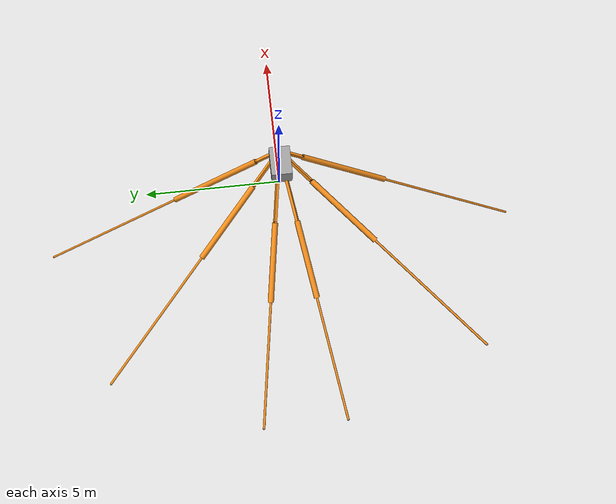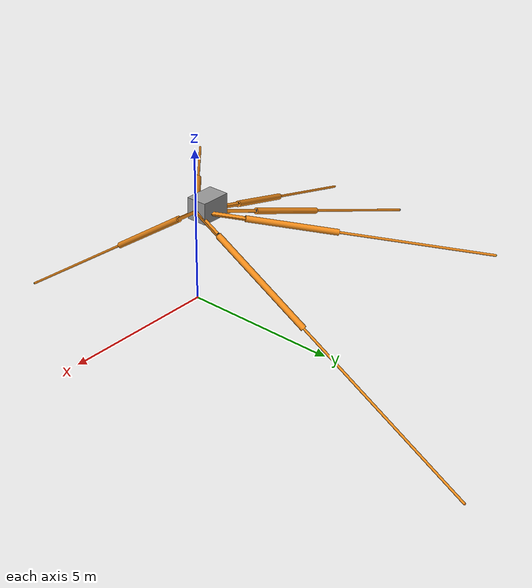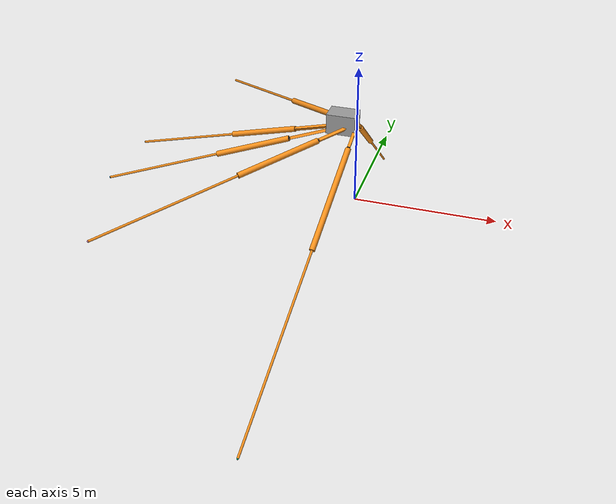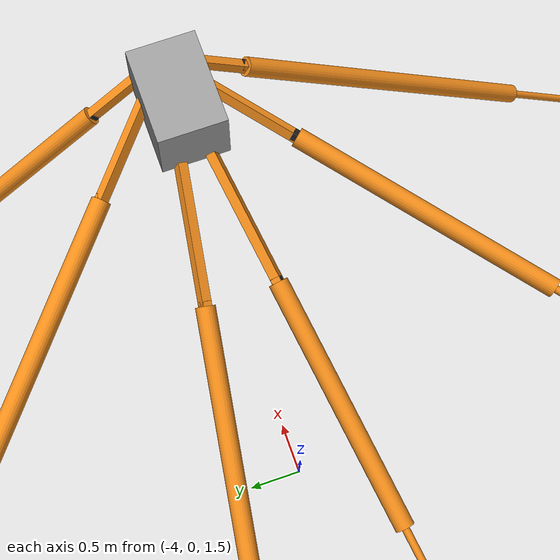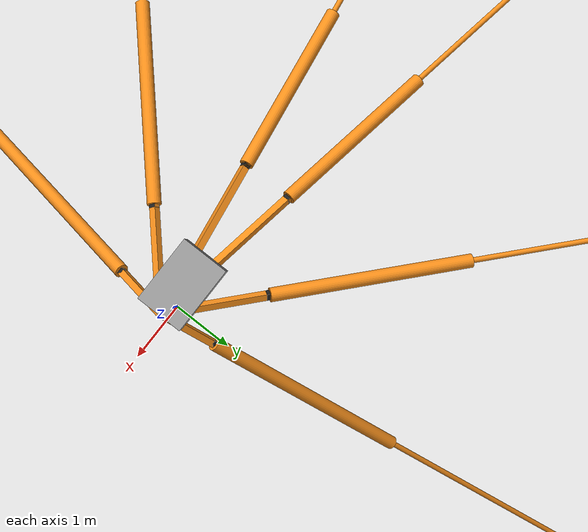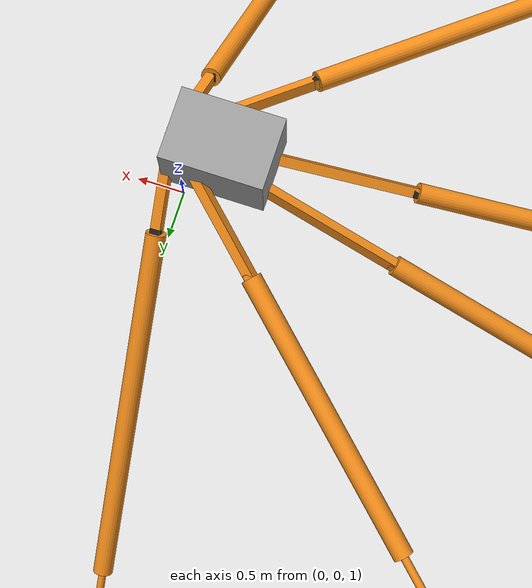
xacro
<?xml version="1.0"?>
<!-- Synthesis of an Ant Leg -->
<robot name="antmodel" xmlns:xacro="http://www.ros.org/wiki/xacro">

  <!-- Constants for robot dimensions -->
  <xacro:property name="PI" value="3.1415926535897931"/>

  <xacro:property name="body_mass" value="0.10" /> <!-- mean value about 10 mg -->
  <xacro:property name="leg_mass"  value="0.03" /> <!-- guessed value for one leg -> distributed evenly between femur & tibia -->
  <xacro:property name="mass"      value="0.01" /> <!-- dummy value for joints -->

  <xacro:property name="width" value="0.1" /> <!-- Square dimensions (widthxwidth) of beams -->
  <xacro:property name="height1" value="0.1" /> <!-- Link 1 -->
  <xacro:property name="height2" value="0.1" /> <!-- Link 2 -->
  <xacro:property name="height3" value="0.1" /> <!-- Link 3 -->

  <!-- Base transformation parameters -->
  <xacro:property name="AZ" value="6" /> <!-- -1*min(PZ(:,5)) 4.0127-->
  <xacro:property name="baseX" value="2.5329" /> <!-- link{1,2}(10,1) -->
  <xacro:property name="baseY" value="0.7012" /> <!-- link{1,2}(10,2) -->
  <xacro:property name="baseZ" value="-0.1418" /> <!-- link{1,2}(10,3) -->
  <xacro:property name="baseLf" value="2.4583" /> <!-- norm(links{1,2}(10,:)) --> <!-- Alessandro front: 2.632-->
  <xacro:property name="baseLm" value="1.5195" /> <!-- norm(links{1,2}(10,:)) -->
  <xacro:property name="baseLr" value="0.9946" /> <!-- norm(links{1,2}(10,:)) -->

 	<!-- front leg -->
  <xacro:property name="ARF" value="-2.0429" /> <!-- base_rotation --> <!-- Roll Pitch Yaw-->
  <xacro:property name="APF" value="0.3039" />
  <xacro:property name="AYF" value="2.9809" />
 	<!-- middle leg -->
  <xacro:property name="ARM" value="-0.6310" />
  <xacro:property name="APM" value="0.2147" />
  <xacro:property name="AYM" value="-2.3994" />
 	<!-- rear leg -->
  <xacro:property name="ARR" value="-2.9311" />
  <xacro:property name="APR" value="0.6044" />
  <xacro:property name="AYR" value="1.6731" />

  <!-- Antleg Parameter --> 	<!-- front leg -->
  <xacro:property name="femur_lenF" value="2.6999"/> <!-- length of femur segment stats{2,2}(1,3)-->
  <xacro:property name="femur_radF" value="0.1"/> <!-- radius of femur segment -->
  <xacro:property name="tibia_lenF" value="4.2717"/> <!-- length of tibia + tarsus segment stats{2,2}(1,4)-->
  <xacro:property name="tibia_radF" value="0.04"/>

  <!-- Antleg Parameter --> 	<!-- middle leg -->
  <xacro:property name="femur_lenM" value="2.9503"/> <!-- length of femur segment stats{2,2}(1,3)-->
  <xacro:property name="femur_radM" value="0.1"/> <!-- radius of femur segment -->
  <xacro:property name="tibia_lenM" value="5.1827"/> <!-- length of tibia + tarsus segment stats{2,2}(1,4)-->
  <xacro:property name="tibia_radM" value="0.04"/>

  <!-- Antleg Parameter --> 	<!-- rear leg -->
  <xacro:property name="femur_lenR" value="3.7715"/> <!-- length of femur segment stats{2,2}(1,3)-->
  <xacro:property name="femur_radR" value="0.1"/> <!-- radius of femur segment -->
  <xacro:property name="tibia_lenR" value="6.8218"/> <!-- length of tibia + tarsus segment stats{2,2}(1,4)-->
  <xacro:property name="tibia_radR" value="0.04"/>

  <!-- Body Parameters -->
  <xacro:property name="body_height" value="0.7" /> <!-- Height of body rectangle z component-->
  <xacro:property name="body_length" value="1" /> <!-- Length of body rectangle x component -->
  <xacro:property name="body_width" value="0.7" /> <!-- Width of body rectangle y component -->

  <!-- Import all Gazebo-customization elements, including Gazebo colors -->
  <xacro:include filename="$(find antmodel_description)/urdf/antmodel.gazebo" />
  <!-- Import Rviz colors -->
  <xacro:include filename="$(find antmodel_description)/urdf/materials.xacro" />

<link name="body">
    <visual>
      <origin xyz="${-body_length/2} 0 ${AZ/2}" rpy="0 0 0"/>
      <geometry>
	<box size="${body_length} ${body_width} ${body_height}"/>
      </geometry>
    </visual>

    <inertial>
      <origin xyz="0 0 0" rpy="0 0 0"/>
      <mass value="${body_mass}"/>
<inertia
	  ixx="${body_mass / 12.0 * (body_width*body_width + body_height*body_height)}" ixy="0.0" ixz="0.0"
	  iyy="${body_mass / 12.0 * (body_length*body_length+body_height*body_height)}" iyz="0.0"
	  izz="${body_mass / 12.0 * (body_length*body_length+body_width*body_width)}"/>
    </inertial>
  </link>

   <gazebo reference="body">
   <material>Gazebo/GreyTransparent</material>
  </gazebo>

<!-- Leg Macro -->
<xacro:macro name="leg" params="suffix xyz rpy baseL femur_len femur_rad tibia_len tibia_rad">

 <!-- Base -->
  <link name="base_${suffix}">

    <visual>
      <origin xyz="${baseL/2} 0 0" rpy="0 0 0"/>
      <geometry>
	<box size="${baseL} ${width} ${width}"/>
      </geometry>
      <material name="orange"/>
    </visual>

  </link>

<!-- Coxa Link -->
  <link name="coxa_${suffix}">
<visual>
      <origin xyz="0 0 0" rpy="0 0 0"/>
      <geometry>
	<box size="${width} ${width} ${height1}"/>
      </geometry>
      <material name="black"/>
    </visual>

    <collision>
      <origin xyz="0 0 0" rpy="0 0 0"/>
      <geometry>
	<box size="${width} ${width} ${height1}"/>
      </geometry>
    </collision>

    <inertial>
      <origin xyz="0 0 0" rpy="0 0 0"/>
      <mass value="${mass}"/>
	<inertia
	  ixx="${mass / 12.0 * (width*width + height1*height1)}" ixy="0.0" ixz="0.0"
	  iyy="${mass / 12.0 * (height1*height1 + width*width)}" iyz="0.0"
	  izz="${mass / 12.0 * (width*width + width*width)}"/>
</inertial>

  </link>

    <!-- Link DOF1 -->
  <link name="link1_${suffix}">
    <collision>
      <origin xyz="0 0 0" rpy="0 0 0"/>
      <geometry>
	<box size="${width} ${width} ${height2}"/>
      </geometry>
    </collision>

    <visual>
      <origin xyz="0 0 0" rpy="0 0 0"/>
      <geometry>
	<box size="${width} ${width} ${height2}"/>
      </geometry>
      <material name="black"/>
    </visual>

    <inertial>
      <origin xyz="0 0 0" rpy="0 0 0"/>
         <mass value="${mass}"/>
	<inertia
	  ixx="${mass / 12.0 * (width*width + height2*height2)}" ixy="0.0" ixz="0.0"
	  iyy="${mass / 12.0 * (height2*height2 + width*width)}" iyz="0.0"
	  izz="${mass / 12.0 * (width*width + width*width)}"/>
	</inertial>
  </link>

    <!-- Link DOF2 -->
  <link name="link2_${suffix}">
    <collision>
      <origin xyz="0 0 0" rpy="0 0 0"/>
      <geometry>
	<box size="${width} ${width} ${height3}"/>
      </geometry>
    </collision>

    <visual>
      <origin xyz="0 0 0" rpy="0 0 0"/>
      <geometry>
	<box size="${width} ${width} ${height3}"/>
      </geometry>
      <material name="orange"/>
    </visual>

    <inertial>
      <origin xyz="0 0 0" rpy="0 0 0"/>
         <mass value="${mass}"/>
	<inertia
	  ixx="${mass / 12.0 * (width*width + height3*height3)}" ixy="0.0" ixz="0.0"
	  iyy="${mass / 12.0 * (height3*height3 + width*width)}" iyz="0.0"
	  izz="${mass / 12.0 * (width*width + width*width)}"/>
</inertial>
  </link>

  <!-- Femur Link -->
  <link name="femur_${suffix}">
    <collision>
      <origin xyz="${femur_len/2} 0 0" rpy="0 ${PI/2} 0"/>
      <geometry>
	<cylinder length="${femur_len}" radius="${femur_rad}"/>
      </geometry>
    </collision>

    <visual>
      <origin xyz="${femur_len/2} 0 0" rpy="0 ${PI/2} 0"/>
      <geometry>
	<cylinder length="${femur_len}" radius="${femur_rad}"/>
      </geometry>
      <material name="orange"/>
    </visual>

    <inertial>
      <origin xyz="${femur_len/2} 0 0" rpy="0 0 0"/>
      <mass value="${leg_mass / 2}"/>
    <inertia
	  ixx="${mass / 12.0 * femur_len*femur_len}" ixy="0.0" ixz="0.0"
	  iyy="0.0" iyz="0.0"
	  izz="${mass / 12.0 * femur_len*femur_len}"/>
</inertial>
  </link>

  <!-- Tibia Link -->
  <link name="tibia_${suffix}">
    <collision>
      <origin xyz="${tibia_len/2} 0 0" rpy="0 ${PI/2} 0"/>
      <geometry>
	<cylinder length="${tibia_len}" radius="${tibia_rad}"/>
      </geometry>
    </collision>

    <visual>
      <origin xyz="${tibia_len/2} 0 0" rpy="0 ${PI/2} 0"/>
      <geometry>
	<cylinder length="${tibia_len}" radius="${tibia_rad}"/>
      </geometry>
      <material name="orange"/>
    </visual>

    <inertial>
      <origin xyz="${tibia_len/2} 0 0" rpy="0 0 0"/>
      <mass value="${leg_mass / 2}"/>
    <inertia
	  ixx="${mass / 12.0 * tibia_len*tibia_len}" ixy="0.0" ixz="0.0"
	  iyy="0.0" iyz="0.0"
	  izz="${mass / 12.0 * tibia_len*tibia_len}"/>
</inertial>

  </link>

<!-- Foot -->
<link name="foot_${suffix}">
<collision>
<origin xyz="${tibia_len} 0 0" rpy="0 0 0"/>
<geometry>

          <sphere radius="${tibia_rad}" />
        </geometry>
<surface>
            <friction>
              <ode>
                <mu>0.7</mu>
                <mu2>0.7</mu2>
              </ode>
            </friction>
          </surface>
</collision>
<visual>
<origin xyz="${tibia_len} 0 0" rpy="0 0 0"/>
<geometry>
          <sphere radius="${tibia_rad}" />
        </geometry>
</visual>
</link>

<joint name="j_body_${suffix}" type="fixed">
        <parent link="body"/>
        <child link="base_${suffix}"/>
	<origin xyz="${xyz}" rpy="${rpy}" />
</joint>

  <!-- Frame {A} -->
  <joint name="A_${suffix}" type="fixed">
    <parent link="base_${suffix}"/>
    <child link="coxa_${suffix}"/>
    <origin xyz="${baseL} 0 0"/>
  </joint>

  <!-- DOF1 = q1 -->
  <joint name="joint1_${suffix}" type="continuous">
    <parent link="coxa_${suffix}"/>
    <child link="link1_${suffix}"/>
    <origin xyz="0 0 0" rpy="0 0 0"/>
    <axis xyz="0 0 1"/>
    <dynamics damping="1"/>
  </joint>

  <!-- DOF2 = q2 -->
  <joint name="joint2_${suffix}" type="continuous">
    <parent link="link1_${suffix}"/>
    <child link="link2_${suffix}"/>
    <origin xyz="0 0 0" rpy="${-PI/2} 0 0"/>
    <axis xyz="0 0 1"/>
    <dynamics damping="1"/>
  </joint>

  <!-- DOF3 = q3 -->
  <joint name="joint3_${suffix}" type="continuous">
    <parent link="link2_${suffix}"/>
    <child link="femur_${suffix}"/>
    <origin xyz="0 0 0" rpy="${PI/2} 0 0"/>
    <axis xyz="0 0 1"/>
    <dynamics damping="1"/>
  </joint>

  <!-- DOF4 = q4 -->
  <joint name="joint4_${suffix}" type="continuous">
    <parent link="femur_${suffix}"/>
    <child link="tibia_${suffix}"/>
    <origin xyz="${femur_len} 0 0" rpy="0 0 0"/>
    <axis xyz="0 0 1"/>
    <dynamics damping="1"/>
  </joint>

<!--Foot-->
<joint name="footjoint_${suffix}" type="fixed">
  <parent link="tibia_${suffix}"/>
  <child link="foot_${suffix}"/>
  <origin xyz="0 0 0" rpy="0 0 0"/>
</joint>

  <gazebo reference="coxa_${suffix}">
    <material>Gazebo/Blue</material>
  </gazebo>
   <gazebo reference="femur_${suffix}">
    <material>Gazebo/Green</material>
  </gazebo>
   <gazebo reference="link1_${suffix}">
    <material>Gazebo/Orange</material>
  </gazebo>
   <gazebo reference="link2_${suffix}">
    <material>Gazebo/Red</material>
  </gazebo>

  <!-- Transmission to ROS -->
  <transmission name="tran1_${suffix}">
    <type>transmission_interface/SimpleTransmission</type>
    <joint name="joint1_${suffix}">
      <hardwareInterface>hardware_interface/EffortJointInterface</hardwareInterface>
    </joint>
    <actuator name="motor1_${suffix}">
      <hardwareInterface>hardware_interface/EffortJointInterface</hardwareInterface>
      <mechanicalReduction>1</mechanicalReduction>
    </actuator>
  </transmission>

  <transmission name="tran2_${suffix}">
    <type>transmission_interface/SimpleTransmission</type>
    <joint name="joint2_${suffix}">
      <hardwareInterface>hardware_interface/EffortJointInterface</hardwareInterface>
    </joint>
    <actuator name="motor2_${suffix}">
      <hardwareInterface>hardware_interface/EffortJointInterface</hardwareInterface>
      <mechanicalReduction>1</mechanicalReduction>
    </actuator>
  </transmission>

  <transmission name="tran3_${suffix}">
    <type>transmission_interface/SimpleTransmission</type>
    <joint name="joint3_${suffix}">
      <hardwareInterface>hardware_interface/EffortJointInterface</hardwareInterface>
    </joint>
    <actuator name="motor3_${suffix}">
      <hardwareInterface>hardware_interface/EffortJointInterface</hardwareInterface>
      <mechanicalReduction>1</mechanicalReduction>
    </actuator>
  </transmission>
  <transmission name="tran4_${suffix}">
    <type>transmission_interface/SimpleTransmission</type>
    <joint name="joint4_${suffix}">
      <hardwareInterface>hardware_interface/EffortJointInterface</hardwareInterface>
    </joint>
    <actuator name="motor4_${suffix}">
      <hardwareInterface>hardware_interface/EffortJointInterface</hardwareInterface>
      <mechanicalReduction>1</mechanicalReduction>
    </actuator>
  </transmission>

</xacro:macro>

<xacro:leg suffix="lf" xyz="0 0 ${AZ/2}" rpy="${ARF} ${APF} ${AYF}" baseL = "${baseLf}" femur_len ="${femur_lenF}" femur_rad="${femur_radF}" tibia_len ="${tibia_lenF}" tibia_rad="${tibia_radF}" />
<xacro:leg suffix="lm" xyz="0 0 ${AZ/2}" rpy="${ARM} ${APM} ${AYM}" baseL = "${baseLm}" femur_len ="${femur_lenM}" femur_rad="${femur_radM}" tibia_len ="${tibia_lenM}" tibia_rad="${tibia_radM}"/>
<xacro:leg suffix="lr" xyz="0 0 ${AZ/2}" rpy="${ARR} ${APR} ${AYR}" baseL = "${baseLr}" femur_len ="${femur_lenR}" femur_rad="${femur_radR}" tibia_len ="${tibia_lenR}" tibia_rad="${tibia_radR}"/>

<xacro:leg suffix="rf" xyz="0 0 ${AZ/2}" rpy="${PI-ARF} ${APF} ${-AYF}" baseL = "${baseLf}" femur_len ="${femur_lenF}" femur_rad="${femur_radF}" tibia_len ="${tibia_lenF}" tibia_rad="${tibia_radF}"/>
<xacro:leg suffix="rm" xyz="0 0 ${AZ/2}" rpy="${PI-ARM} ${APM} ${-AYM}" baseL = "${baseLm}" femur_len ="${femur_lenM}" femur_rad="${femur_radM}" tibia_len ="${tibia_lenM}" tibia_rad="${tibia_radM}"/>
<xacro:leg suffix="rr" xyz="0 0 ${AZ/2}" rpy="${PI-ARR} ${APR} ${-AYR}" baseL = "${baseLr}" femur_len ="${femur_lenR}" femur_rad="${femur_radR}" tibia_len ="${tibia_lenR}" tibia_rad="${tibia_radR}"/>

</robot>
